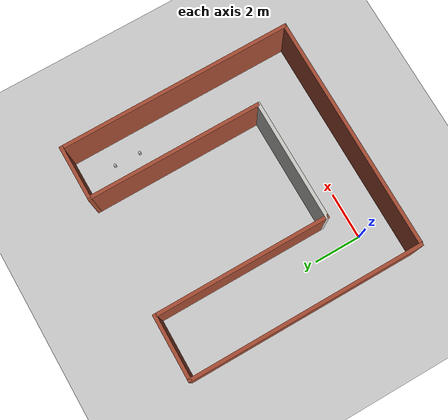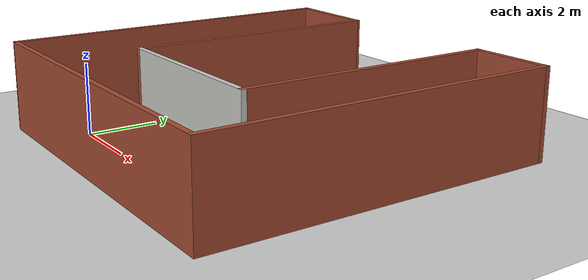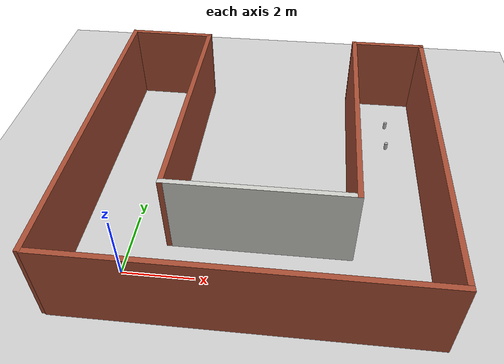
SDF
<sdf version="1.6">
 <world name="default">
  <light name="sun" type="directional">
   <pose>0 0 10 0 -0 0</pose>
   <diffuse>0.8 0.8 0.8 1</diffuse>
   <specular>0.2 0.2 0.2 1</specular>
   <attenuation>
    <range>1000</range>
    <constant>0.9</constant>
    <linear>0.01</linear>
    <quadratic>0.001</quadratic>
   </attenuation>
   <direction>-0.5 0.1 -0.9</direction>
  </light>
  <model name="ground_plane">
   <static>1</static>
   <link name="link">
    <collision name="collision">
     <geometry><plane><normal>0 0 1</normal><size>100 100</size></plane></geometry>
     <surface>
      <contact><collide_bitmask>65535</collide_bitmask></contact>
      <friction><ode><mu>100</mu><mu2>50</mu2></ode></friction>
     </surface>
    </collision>
    <visual name="visual">
     <cast_shadows>0</cast_shadows>
     <geometry><plane><normal>0 0 1</normal><size>100 100</size></plane></geometry>
     <material>
      <script><uri>file://media/materials/scripts/gazebo.material</uri><name>Gazebo/Grey</name></script>
     </material>
    </visual>
   </link>
  </model>
  <gravity>0 0 -9.8</gravity>
  <magnetic_field>6e-06 2.3e-05 -4.2e-05</magnetic_field>
  <atmosphere type="adiabatic"/>
  <physics name="default_physics" default="0" type="ode">
   <max_step_size>0.001</max_step_size>
   <real_time_factor>1</real_time_factor>
   <real_time_update_rate>1000</real_time_update_rate>
  </physics>
  <scene><ambient>0.4 0.4 0.4 1</ambient><background>0.7 0.7 0.7 1</background><shadows>1</shadows></scene>
  <audio><device>default</device></audio>
  <spherical_coordinates>
   <surface_model>EARTH_WGS84</surface_model>
   <latitude_deg>0</latitude_deg>
   <longitude_deg>0</longitude_deg>
   <elevation>0</elevation>
   <heading_deg>0</heading_deg>
  </spherical_coordinates>
  <model name="U">
   <pose>3.41654 3.55717 0 0 -0 0</pose>
   <link name="Wall_12">
    <collision name="Wall_12_Collision">
     <geometry><box><size>10 0.15 2.5</size></box></geometry>
     <pose>0 0 1.25 0 -0 0</pose>
    </collision>
    <visual name="Wall_12_Visual">
     <pose>0 0 1.25 0 -0 0</pose>
     <geometry><box><size>10 0.15 2.5</size></box></geometry>
     <material>
      <script><uri>file://media/materials/scripts/gazebo.material</uri><name>Gazebo/Bricks</name></script>
      <ambient>1 1 1 1</ambient>
     </material>
     <meta><layer>0</layer></meta>
    </visual>
    <pose>0.056977 -4.93868 0 0 -0 0</pose>
   </link>
   <link name="Wall_13">
    <collision name="Wall_13_Collision">
     <geometry><box><size>10 0.15 2.5</size></box></geometry>
     <pose>0 0 1.25 0 -0 0</pose>
    </collision>
    <visual name="Wall_13_Visual">
     <pose>0 0 1.25 0 -0 0</pose>
     <geometry><box><size>10 0.15 2.5</size></box></geometry>
     <material>
      <script><uri>file://media/materials/scripts/gazebo.material</uri><name>Gazebo/Bricks</name></script>
      <ambient>1 1 1 1</ambient>
     </material>
     <meta><layer>0</layer></meta>
    </visual>
    <pose>4.98198 -0.013678 0 0 -0 1.5708</pose>
   </link>
   <link name="Wall_14">
    <collision name="Wall_14_Collision">
     <geometry><box><size>2.39393 0.15 2.5</size></box></geometry>
     <pose>0 0 1.25 0 -0 0</pose>
    </collision>
    <visual name="Wall_14_Visual">
     <pose>0 0 1.25 0 -0 0</pose>
     <geometry><box><size>2.39393 0.15 2.5</size></box></geometry>
     <material>
      <script><uri>file://media/materials/scripts/gazebo.material</uri><name>Gazebo/Bricks</name></script>
      <ambient>1 1 1 1</ambient>
     </material>
     <meta><layer>0</layer></meta>
    </visual>
    <pose>3.86001 4.91132 0 0 -0 3.14159</pose>
   </link>
   <link name="Wall_15">
    <collision name="Wall_15_Collision">
     <geometry><box><size>7.5 0.15 2.5</size></box></geometry>
     <pose>0 0 1.25 0 -0 0</pose>
    </collision>
    <visual name="Wall_15_Visual">
     <pose>0 0 1.25 0 -0 0</pose>
     <geometry><box><size>7.5 0.15 2.5</size></box></geometry>
     <material>
      <script><uri>file://media/materials/scripts/gazebo.material</uri><name>Gazebo/Bricks</name></script>
      <ambient>1 1 1 1</ambient>
     </material>
     <meta><layer>0</layer></meta>
    </visual>
    <pose>2.73804 1.23632 0 0 -0 -1.5708</pose>
   </link>
   <link name="Wall_16">
    <collision name="Wall_16_Collision">
     <geometry><box><size>5.21692 0.15 2.5</size></box></geometry>
     <pose>0 0 1.25 0 -0 0</pose>
    </collision>
    <visual name="Wall_16_Visual">
     <pose>0 0 1.25 0 -0 0</pose>
     <geometry><box><size>5.21692 0.15 2.5</size></box></geometry>
     <material>
      <script><uri>file://media/materials/scripts/gazebo.material</uri><name>Gazebo/CeilingTiled</name></script>
      <ambient>0.996078 0.47451 0.0196078 1</ambient>
     </material>
     <meta><layer>0</layer></meta>
    </visual>
    <pose>0.204596 -2.43868 0 0 -0 3.14159</pose>
   </link>
   <link name="Wall_17">
    <collision name="Wall_17_Collision">
     <geometry><box><size>7.5 0.15 2.5</size></box></geometry>
     <pose>0 0 1.25 0 -0 0</pose>
    </collision>
    <visual name="Wall_17_Visual">
     <pose>0 0 1.25 0 -0 0</pose>
     <geometry><box><size>7.5 0.15 2.5</size></box></geometry>
     <material>
      <script><uri>file://media/materials/scripts/gazebo.material</uri><name>Gazebo/Bricks</name></script>
      <ambient>1 1 1 1</ambient>
     </material>
     <meta><layer>0</layer></meta>
    </visual>
    <pose>-2.32885 1.23632 0 0 -0 1.5708</pose>
   </link>
   <link name="Wall_18">
    <collision name="Wall_18_Collision">
     <geometry><box><size>2.77666 0.15 2.5</size></box></geometry>
     <pose>0 0 1.25 0 -0 0</pose>
    </collision>
    <visual name="Wall_18_Visual">
     <pose>0 0 1.25 0 -0 0</pose>
     <geometry><box><size>2.77666 0.15 2.5</size></box></geometry>
     <material>
      <script><uri>file://media/materials/scripts/gazebo.material</uri><name>Gazebo/Bricks</name></script>
      <ambient>1 1 1 1</ambient>
     </material>
     <meta><layer>0</layer></meta>
    </visual>
    <pose>-3.64211 4.92462 0 0 -0 3.13146</pose>
   </link>
   <link name="Wall_19">
    <collision name="Wall_19_Collision">
     <geometry><box><size>10 0.15 2.5</size></box></geometry>
     <pose>0 0 1.25 0 -0 0</pose>
    </collision>
    <visual name="Wall_19_Visual">
     <pose>0 0 1.25 0 -0 0</pose>
     <geometry><box><size>10 0.15 2.5</size></box></geometry>
     <material>
      <script><uri>file://media/materials/scripts/gazebo.material</uri><name>Gazebo/Bricks</name></script>
      <ambient>0.996078 0.47451 0.0196078 1</ambient>
     </material>
     <meta><layer>0</layer></meta>
    </visual>
    <pose>-4.98198 0.012922 0 0 -0 -1.5708</pose>
   </link>
   <static>1</static>
  </model>
  <model name="beer">
   <link name="link">
    <pose>0 0 0.115 0 -0 0</pose>
    <inertial>
     <mass>0.39</mass>
     <inertia><ixx>0.00058</ixx><ixy>0</ixy><ixz>0</ixz><iyy>0.00058</iyy><iyz>0</iyz><izz>0.00019</izz></inertia>
    </inertial>
    <collision name="collision">
     <geometry><cylinder><radius>0.055</radius><length>0.23</length></cylinder></geometry>
    </collision>
    <visual name="visual">
     <geometry><cylinder><radius>0.055</radius><length>0.23</length></cylinder></geometry>
     <material>
      <script>
       <uri>model://beer/materials/scripts</uri>
       <uri>model://beer/materials/textures</uri>
       <name>Beer/Diffuse</name>
      </script>
     </material>
    </visual>
   </link>
   <pose>7.44517 7.03054 -2e-06 1e-06 0 -7e-06</pose>
  </model>
  <model name="beer_0">
   <link name="link">
    <pose>0 0 0.115 0 -0 0</pose>
    <inertial>
     <mass>0.39</mass>
     <inertia><ixx>0.00058</ixx><ixy>0</ixy><ixz>0</ixz><iyy>0.00058</iyy><iyz>0</iyz><izz>0.00019</izz></inertia>
    </inertial>
    <collision name="collision">
     <geometry><cylinder><radius>0.055</radius><length>0.23</length></cylinder></geometry>
    </collision>
    <visual name="visual">
     <geometry><cylinder><radius>0.055</radius><length>0.23</length></cylinder></geometry>
     <material>
      <script>
       <uri>model://beer/materials/scripts</uri>
       <uri>model://beer/materials/textures</uri>
       <name>Beer/Diffuse</name>
      </script>
     </material>
    </visual>
   </link>
   <pose>7.40911 5.91287 -7e-06 -0 -0 -6e-06</pose>
  </model>
  <model name="wood_cube_10cm">
   <link name="link">
    <pose>0 0 0.05 0 -0 0</pose>
    <inertial>
     <mass>0.5167</mass>
     <inertia>
      <ixx>0.000861167</ixx>
      <ixy>0</ixy>
      <ixz>0</ixz>
      <iyy>0.000861167</iyy>
      <iyz>0</iyz>
      <izz>0.000861167</izz>
     </inertia>
    </inertial>
    <collision name="collision">
     <geometry><box><size>0.1 0.1 0.1</size></box></geometry>
     <surface>
      <contact>
       <poissons_ratio>0.347</poissons_ratio>
       <elastic_modulus>8.8e+09</elastic_modulus>
       <ode><kp>100000</kp><kd>100</kd><max_vel>100</max_vel><min_depth>0.001</min_depth></ode>
      </contact>
      <friction>
       <torsional>
        <coefficient>1</coefficient>
        <use_patch_radius>0</use_patch_radius>
        <surface_radius>0.01</surface_radius>
       </torsional>
      </friction>
     </surface>
    </collision>
    <visual name="visual">
     <geometry><box><size>0.1 0.1 0.1</size></box></geometry>
     <material>
      <script><uri>file://media/materials/scripts/gazebo.material</uri><name>Gazebo/Wood</name></script>
     </material>
    </visual>
   </link>
   <pose>0.919379 0.036054 -0.001013 0 -0 0</pose>
  </model>
 </world>
</sdf>
